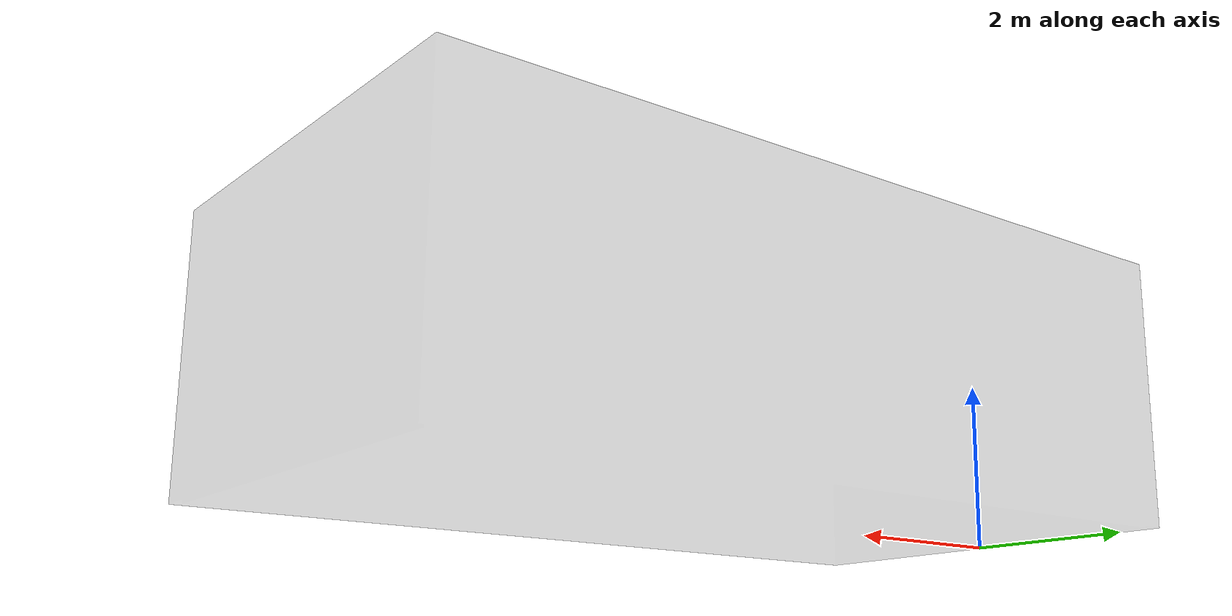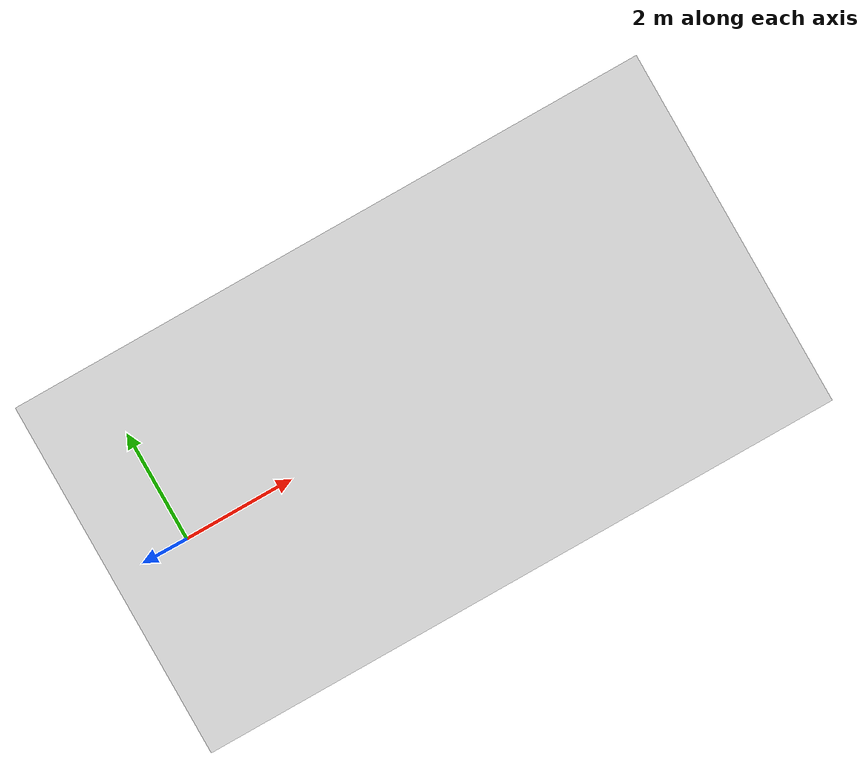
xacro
<?xml version="1.0"?>

<robot name="watertank" xmlns:xacro="http://www.ros.org/wiki/xacro" >
  <xacro:arg name="debug" default="0"/>
  <xacro:arg name="namespace" default="watertank"/>
  <xacro:include filename="$(find watertank_description)/urdf/watertank.urdf.xacro"/>
  <xacro:watertank namespace="$(arg namespace)" debug="$(arg debug)"/>
</robot>

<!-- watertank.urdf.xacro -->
<robot name="watertank" xmlns:xacro="http://www.ros.org/wiki/xacro">

  <xacro:property name="PI" value="3.141592" />
  <xacro:property name="body" value="file://$(find watertank_description)/mesh/watertank.dae"/>

  <xacro:macro name="watertank" params="namespace debug">

  <!-- Links. -->
  <link name="tank_base">
    <visual>
      <origin xyz="4.5 0. 1.5" rpy="${-pi} 0 0"/>
      <geometry>
        <mesh filename="${body}" scale="1 1 1"/>
      </geometry>
      <material name="White">
        <color rgba="0.1 0.1 0.1 0.2"/>
      </material>
    </visual>
  </link>

  </xacro:macro>

</robot>
